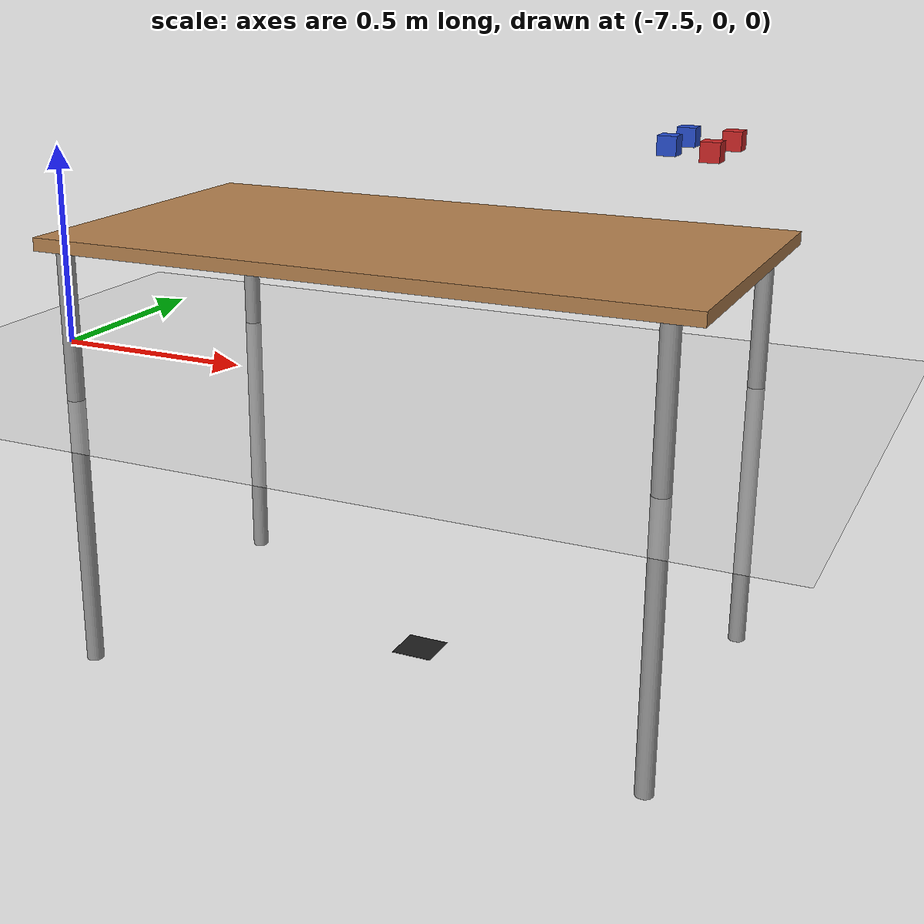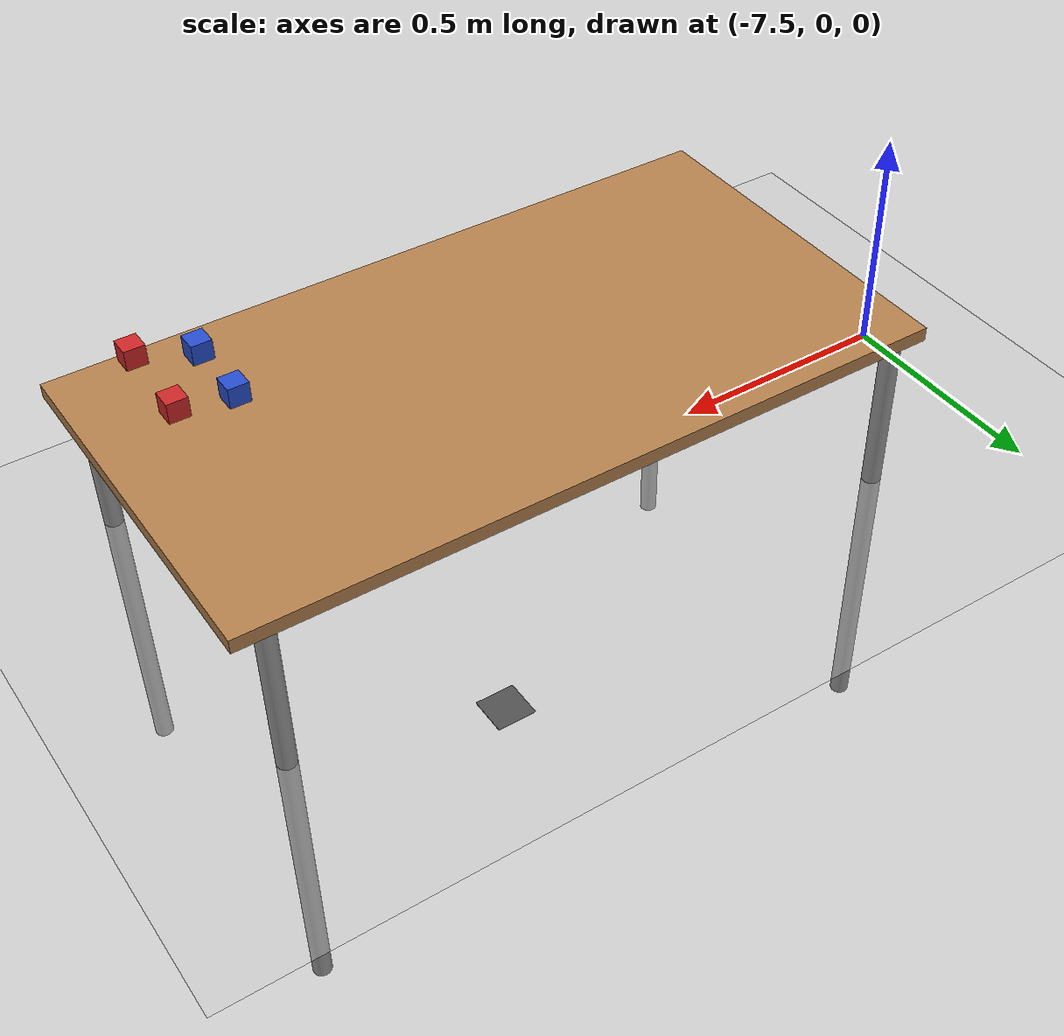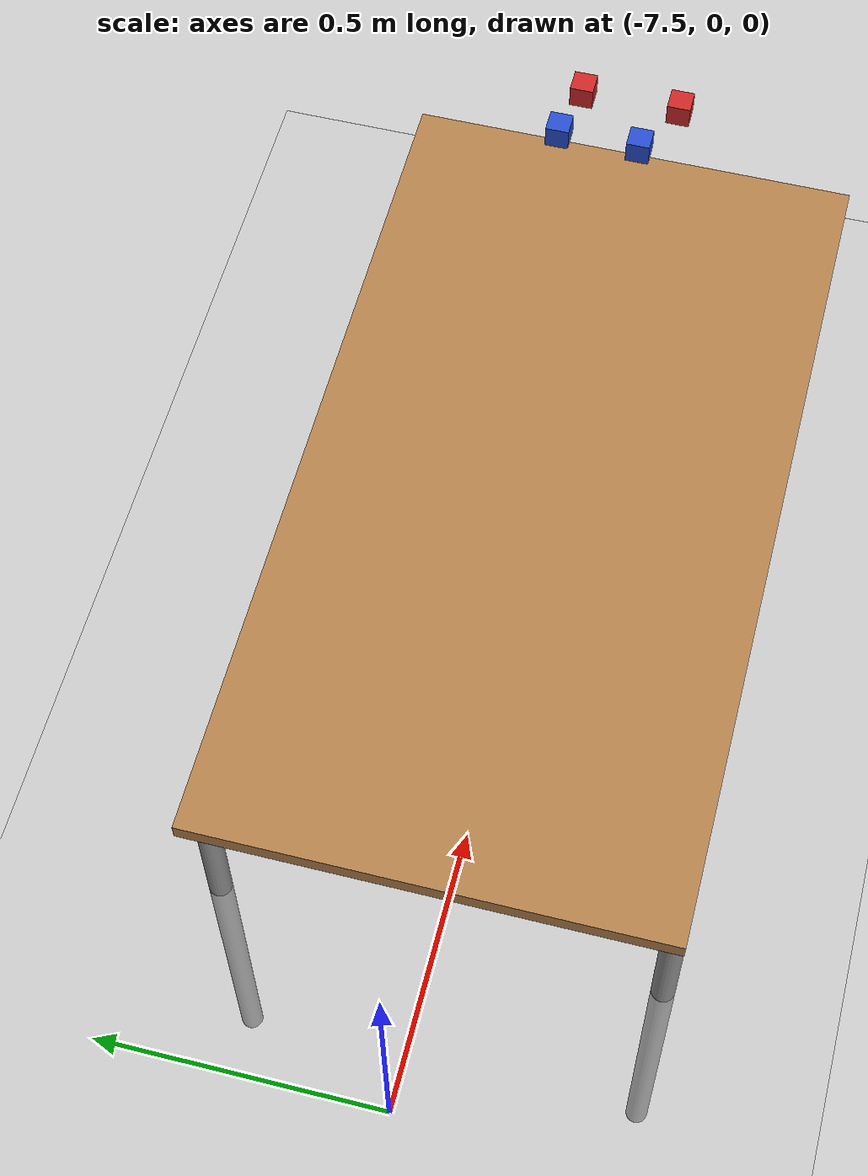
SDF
<sdf version="1.7">
 <world name="default">
  <light name="sun" type="directional">
   <pose>0 0 10 0 -0 0</pose>
   <diffuse>0.8 0.8 0.8 1</diffuse>
   <specular>0.2 0.2 0.2 1</specular>
   <attenuation>
    <range>1000</range>
    <constant>0.9</constant>
    <linear>0.01</linear>
    <quadratic>0.001</quadratic>
   </attenuation>
   <direction>-0.5 0.1 -0.9</direction>
   <spot><inner_angle>0</inner_angle><outer_angle>0</outer_angle><falloff>0</falloff></spot>
  </light>
  <model name="ground_plane">
   <static>1</static>
   <link name="link">
    <collision name="collision">
     <geometry><plane><normal>0 0 1</normal><size>100 100</size></plane></geometry>
     <surface><friction><ode><mu>100</mu><mu2>50</mu2></ode></friction></surface>
    </collision>
    <visual name="visual">
     <cast_shadows>0</cast_shadows>
     <geometry><plane><normal>0 0 1</normal><size>100 100</size></plane></geometry>
     <material>
      <script><uri>file://media/materials/scripts/gazebo.material</uri><name>Gazebo/Grey</name></script>
     </material>
    </visual>
   </link>
  </model>
  <gravity>0 0 -9.8</gravity>
  <magnetic_field>6e-06 2.3e-05 -4.2e-05</magnetic_field>
  <atmosphere type="adiabatic"/>
  <physics name="default_physics" default="0" type="ode">
   <max_step_size>0.001</max_step_size>
   <real_time_factor>1</real_time_factor>
   <real_time_update_rate>1000</real_time_update_rate>
  </physics>
  <scene><ambient>0.4 0.4 0.4 1</ambient><background>0.7 0.7 0.7 1</background><shadows>1</shadows></scene>
  <audio><device>default</device></audio>
  <spherical_coordinates>
   <surface_model>EARTH_WGS84</surface_model>
   <latitude_deg>0</latitude_deg>
   <longitude_deg>0</longitude_deg>
   <elevation>0</elevation>
   <heading_deg>0</heading_deg>
  </spherical_coordinates>
  <model name="table">
   <static>1</static>
   <link name="link_table">
    <collision name="table_surface">
     <pose>0 0 1 0 -0 0</pose>
     <geometry><box><size>1.5 0.8 0.03</size></box></geometry>
     <surface><friction><ode><mu>0.6</mu><mu2>0.6</mu2></ode></friction></surface>
    </collision>
    <visual name="table_surface1">
     <pose>0 0 1 0 -0 0</pose>
     <geometry><box><size>1.5 0.8 0.03</size></box></geometry>
     <material>
      <script><uri>file://media/materials/scripts/gazebo.material</uri><name>Gazebo/Wood</name></script>
     </material>
    </visual>
    <collision name="front_left_leg">
     <pose>0.68 0.38 0.5 0 -0 0</pose>
     <geometry><cylinder><radius>0.02</radius><length>1</length></cylinder></geometry>
    </collision>
    <visual name="front_left_leg1">
     <pose>0.68 0.38 0.5 0 -0 0</pose>
     <geometry><cylinder><radius>0.02</radius><length>1</length></cylinder></geometry>
     <material>
      <script><uri>file://media/materials/scripts/gazebo.material</uri><name>Gazebo/Grey</name></script>
     </material>
    </visual>
    <collision name="front_right_leg">
     <pose>0.68 -0.38 0.5 0 -0 0</pose>
     <geometry><cylinder><radius>0.02</radius><length>1</length></cylinder></geometry>
    </collision>
    <visual name="front_right_leg1">
     <pose>0.68 -0.38 0.5 0 -0 0</pose>
     <geometry><cylinder><radius>0.02</radius><length>1</length></cylinder></geometry>
     <material>
      <script><uri>file://media/materials/scripts/gazebo.material</uri><name>Gazebo/Grey</name></script>
     </material>
    </visual>
    <collision name="back_right_leg">
     <pose>-0.68 -0.38 0.5 0 -0 0</pose>
     <geometry><cylinder><radius>0.02</radius><length>1</length></cylinder></geometry>
    </collision>
    <visual name="back_right_leg1">
     <pose>-0.68 -0.38 0.5 0 -0 0</pose>
     <geometry><cylinder><radius>0.02</radius><length>1</length></cylinder></geometry>
     <material>
      <script><uri>file://media/materials/scripts/gazebo.material</uri><name>Gazebo/Grey</name></script>
     </material>
    </visual>
    <collision name="back_left_leg">
     <pose>-0.68 0.38 0.5 0 -0 0</pose>
     <geometry><cylinder><radius>0.02</radius><length>1</length></cylinder></geometry>
    </collision>
    <visual name="back_left_leg1">
     <pose>-0.68 0.38 0.5 0 -0 0</pose>
     <geometry><cylinder><radius>0.02</radius><length>1</length></cylinder></geometry>
     <material>
      <script><uri>file://media/materials/scripts/gazebo.material</uri><name>Gazebo/Grey</name></script>
     </material>
    </visual>
   </link>
   <joint name="link1joint" type="fixed"><child>link1</child><parent>link_table</parent></joint>
   <link name="link1">
    <visual name="visual">
     <geometry><box><size>0.1 0.1 0.001</size></box></geometry>
     <material>
      <script><uri>file://media/materials/scripts/gazebo.material</uri><name>Gazebo/Black</name></script>
     </material>
    </visual>
    <inertial>
     <inertia><ixx>1</ixx><ixy>0</ixy><ixz>0</ixz><iyy>1</iyy><iyz>0</iyz><izz>1</izz></inertia>
     <mass>1</mass>
    </inertial>
   </link>
   <pose>-6.51018 0 -0.65 0 -0 0</pose>
  </model>
  <model name="box4cm">
   <link name="link_0">
    <inertial>
     <mass>1</mass>
     <inertia>
      <ixx>0.166667</ixx>
      <ixy>0</ixy>
      <ixz>0</ixz>
      <iyy>0.166667</iyy>
      <iyz>0</iyz>
      <izz>0.166667</izz>
     </inertia>
    </inertial>
    <visual name="visual">
     <geometry><box><size>0.04 0.04 0.04</size></box></geometry>
     <material>
      <script><uri>file://media/materials/scripts/gazebo.material</uri><name>Gazebo/Red</name></script>
     </material>
    </visual>
    <collision name="collision">
     <geometry><box><size>0.04 0.04 0.04</size></box></geometry>
     <surface>
      <friction><ode><mu>1</mu><mu2>1</mu2><fdir1>0 0 0</fdir1><slip1>0</slip1><slip2>0</slip2></ode></friction>
      <bounce><restitution_coefficient>0</restitution_coefficient><threshold>1e+06</threshold></bounce>
      <contact>
       <collide_without_contact>0</collide_without_contact>
       <collide_without_contact_bitmask>1</collide_without_contact_bitmask>
       <collide_bitmask>1</collide_bitmask>
       <ode>
        <soft_cfm>0</soft_cfm>
        <soft_erp>0.2</soft_erp>
        <kp>1e+13</kp>
        <kd>1</kd>
        <max_vel>0.01</max_vel>
        <min_depth>0</min_depth>
       </ode>
      </contact>
     </surface>
    </collision>
   </link>
   <static>0</static>
   <pose>-5.85 -0.085 0.6 0 -0 0</pose>
  </model>
  <model name="box4cm1">
   <link name="link_0">
    <inertial>
     <mass>1</mass>
     <inertia>
      <ixx>0.166667</ixx>
      <ixy>0</ixy>
      <ixz>0</ixz>
      <iyy>0.166667</iyy>
      <iyz>0</iyz>
      <izz>0.166667</izz>
     </inertia>
    </inertial>
    <visual name="visual">
     <geometry><box><size>0.04 0.04 0.04</size></box></geometry>
     <material>
      <script><uri>file://media/materials/scripts/gazebo.material</uri><name>Gazebo/Red</name></script>
     </material>
    </visual>
    <collision name="collision">
     <geometry><box><size>0.04 0.04 0.04</size></box></geometry>
     <surface>
      <friction>
       <ode><mu>1</mu><mu2>1</mu2><fdir1>0 0 0</fdir1><slip1>0</slip1><slip2>0</slip2></ode>
       <torsional>
        <coefficient>1</coefficient>
        <patch_radius>0</patch_radius>
        <surface_radius>0</surface_radius>
        <use_patch_radius>1</use_patch_radius>
        <ode><slip>0</slip></ode>
       </torsional>
      </friction>
      <bounce><restitution_coefficient>0</restitution_coefficient><threshold>1e+06</threshold></bounce>
      <contact>
       <collide_without_contact>0</collide_without_contact>
       <collide_without_contact_bitmask>1</collide_without_contact_bitmask>
       <collide_bitmask>1</collide_bitmask>
       <ode>
        <soft_cfm>0</soft_cfm>
        <soft_erp>0.2</soft_erp>
        <kp>1e+13</kp>
        <kd>1</kd>
        <max_vel>0.01</max_vel>
        <min_depth>0</min_depth>
       </ode>
       <bullet>
        <split_impulse>1</split_impulse>
        <split_impulse_penetration_threshold>-0.01</split_impulse_penetration_threshold>
        <soft_cfm>0</soft_cfm>
        <soft_erp>0.2</soft_erp>
        <kp>1e+13</kp>
        <kd>1</kd>
       </bullet>
      </contact>
     </surface>
    </collision>
   </link>
   <static>0</static>
   <pose>-5.85 0.085 0.6 0 -0 0</pose>
  </model>
  <model name="box4cm2">
   <link name="link_0">
    <inertial>
     <mass>1</mass>
     <inertia>
      <ixx>0.166667</ixx>
      <ixy>0</ixy>
      <ixz>0</ixz>
      <iyy>0.166667</iyy>
      <iyz>0</iyz>
      <izz>0.166667</izz>
     </inertia>
    </inertial>
    <visual name="visual">
     <geometry><box><size>0.04 0.04 0.04</size></box></geometry>
     <material>
      <script><uri>file://media/materials/scripts/gazebo.material</uri><name>Gazebo/Blue</name></script>
     </material>
    </visual>
    <collision name="collision">
     <geometry><box><size>0.04 0.04 0.04</size></box></geometry>
     <surface>
      <friction>
       <ode><mu>1</mu><mu2>1</mu2><fdir1>0 0 0</fdir1><slip1>0</slip1><slip2>0</slip2></ode>
       <torsional>
        <coefficient>1</coefficient>
        <patch_radius>0</patch_radius>
        <surface_radius>0</surface_radius>
        <use_patch_radius>1</use_patch_radius>
        <ode><slip>0</slip></ode>
       </torsional>
      </friction>
      <bounce><restitution_coefficient>0</restitution_coefficient><threshold>1e+06</threshold></bounce>
      <contact>
       <collide_without_contact>0</collide_without_contact>
       <collide_without_contact_bitmask>1</collide_without_contact_bitmask>
       <collide_bitmask>1</collide_bitmask>
       <ode>
        <soft_cfm>0</soft_cfm>
        <soft_erp>0.2</soft_erp>
        <kp>1e+13</kp>
        <kd>1</kd>
        <max_vel>0.01</max_vel>
        <min_depth>0</min_depth>
       </ode>
       <bullet>
        <split_impulse>1</split_impulse>
        <split_impulse_penetration_threshold>-0.01</split_impulse_penetration_threshold>
        <soft_cfm>0</soft_cfm>
        <soft_erp>0.2</soft_erp>
        <kp>1e+13</kp>
        <kd>1</kd>
       </bullet>
      </contact>
     </surface>
    </collision>
   </link>
   <static>0</static>
   <pose>-5.95 0.105 0.6 0 -0 0</pose>
  </model>
  <model name="box4cm3">
   <link name="link_0">
    <inertial>
     <mass>1</mass>
     <inertia>
      <ixx>0.166667</ixx>
      <ixy>0</ixy>
      <ixz>0</ixz>
      <iyy>0.166667</iyy>
      <iyz>0</iyz>
      <izz>0.166667</izz>
     </inertia>
    </inertial>
    <visual name="visual">
     <geometry><box><size>0.04 0.04 0.04</size></box></geometry>
     <material>
      <script><uri>file://media/materials/scripts/gazebo.material</uri><name>Gazebo/Blue</name></script>
     </material>
    </visual>
    <collision name="collision">
     <geometry><box><size>0.04 0.04 0.04</size></box></geometry>
     <surface>
      <friction>
       <ode><mu>1</mu><mu2>1</mu2><fdir1>0 0 0</fdir1><slip1>0</slip1><slip2>0</slip2></ode>
       <torsional>
        <coefficient>1</coefficient>
        <patch_radius>0</patch_radius>
        <surface_radius>0</surface_radius>
        <use_patch_radius>1</use_patch_radius>
        <ode><slip>0</slip></ode>
       </torsional>
      </friction>
      <bounce><restitution_coefficient>0</restitution_coefficient><threshold>1e+06</threshold></bounce>
      <contact>
       <collide_without_contact>0</collide_without_contact>
       <collide_without_contact_bitmask>1</collide_without_contact_bitmask>
       <collide_bitmask>1</collide_bitmask>
       <ode>
        <soft_cfm>0</soft_cfm>
        <soft_erp>0.2</soft_erp>
        <kp>1e+13</kp>
        <kd>1</kd>
        <max_vel>0.01</max_vel>
        <min_depth>0</min_depth>
       </ode>
       <bullet>
        <split_impulse>1</split_impulse>
        <split_impulse_penetration_threshold>-0.01</split_impulse_penetration_threshold>
        <soft_cfm>0</soft_cfm>
        <soft_erp>0.2</soft_erp>
        <kp>1e+13</kp>
        <kd>1</kd>
       </bullet>
      </contact>
     </surface>
    </collision>
   </link>
   <static>0</static>
   <pose>-5.95 -0.035 0.6 0 -0 0</pose>
  </model>
 </world>
</sdf>
